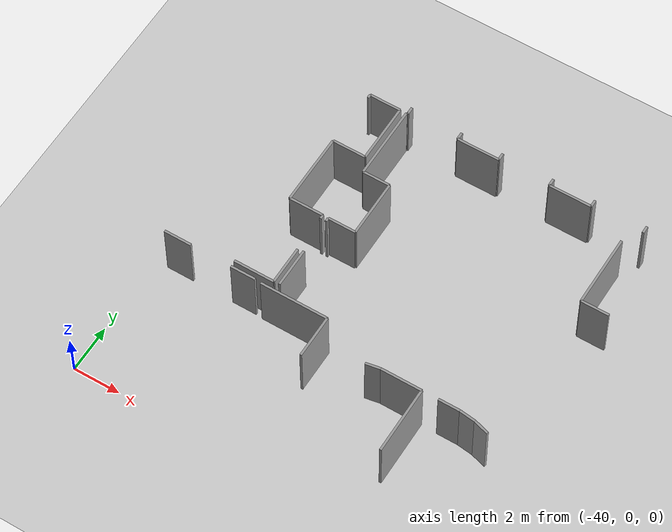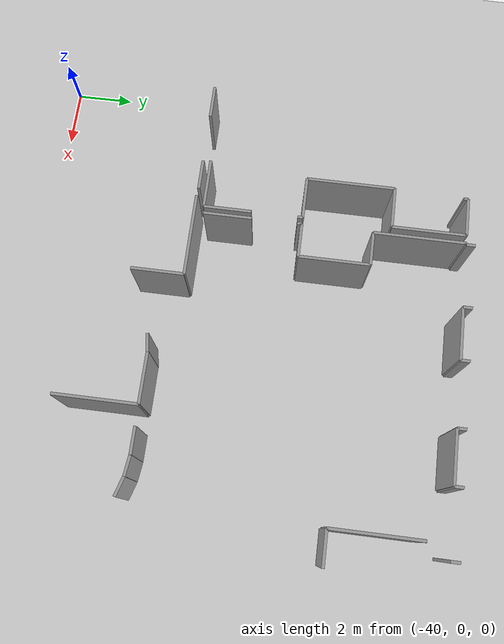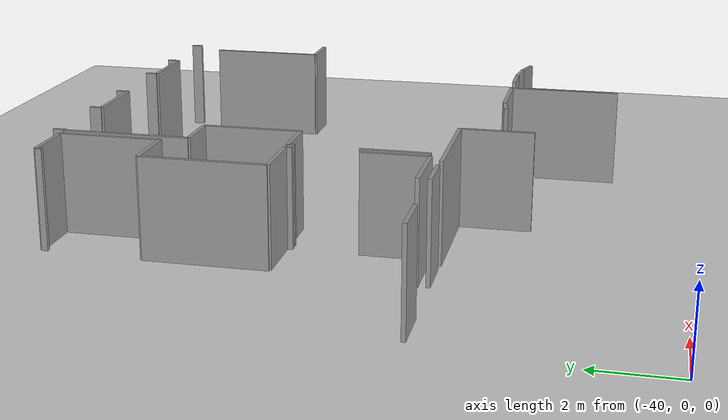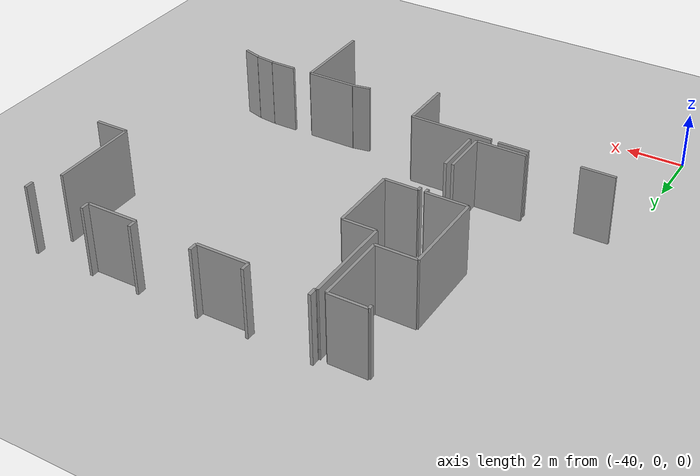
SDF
<sdf version="1.6">
 <world name="default">
  <model name="ground_plane">
   <static>1</static>
   <link name="link">
    <collision name="collision">
     <geometry><plane><normal>0 0 1</normal><size>100 100</size></plane></geometry>
     <surface><friction><ode><mu>100</mu><mu2>50</mu2></ode></friction></surface>
    </collision>
    <visual name="visual">
     <cast_shadows>0</cast_shadows>
     <geometry><plane><normal>0 0 1</normal><size>100 100</size></plane></geometry>
     <material>
      <script><uri>file://media/materials/scripts/gazebo.material</uri><name>Gazebo/Grey</name></script>
     </material>
    </visual>
   </link>
  </model>
  <model name="0510032270_A_40_1_104">
   <static>1</static>
   <link name="Wall_24">
    <collision name="Wall_24_Collision">
     <geometry><box><size>0.154262551304 0.1 2.5</size></box></geometry>
     <pose>0.0771312756522 0 1.25 0 0 0</pose>
    </collision>
    <visual name="Wall_24_Visual">
     <pose>0.0771312756522 0 1.25 0 0 0</pose>
     <geometry><box><size>0.154262551304 0.1 2.5</size></box></geometry>
     <material>
      <script><uri>file://media/materials/scripts/gazebo.material</uri><name>Gazebo/Grey</name></script>
      <ambient>1 1 1 1</ambient>
     </material>
    </visual>
    <pose>11.5399570505 -0.57956465939 0 0 0 1.57079632679</pose>
   </link>
   <link name="Wall_25">
    <collision name="Wall_25_Collision">
     <geometry><box><size>1.33346887429 0.1 2.5</size></box></geometry>
     <pose>0.666734437145 0 1.25 0 0 0</pose>
    </collision>
    <visual name="Wall_25_Visual">
     <pose>0.666734437145 0 1.25 0 0 0</pose>
     <geometry><box><size>1.33346887429 0.1 2.5</size></box></geometry>
     <material>
      <script><uri>file://media/materials/scripts/gazebo.material</uri><name>Gazebo/Grey</name></script>
      <ambient>1 1 1 1</ambient>
     </material>
    </visual>
    <pose>11.5399570505 -0.425302108085 0 0 0 0.0</pose>
   </link>
   <link name="Wall_26">
    <collision name="Wall_26_Collision">
     <geometry><box><size>2.53021080854 0.1 2.5</size></box></geometry>
     <pose>1.26510540427 0 1.25 0 0 0</pose>
    </collision>
    <visual name="Wall_26_Visual">
     <pose>1.26510540427 0 1.25 0 0 0</pose>
     <geometry><box><size>2.53021080854 0.1 2.5</size></box></geometry>
     <material>
      <script><uri>file://media/materials/scripts/gazebo.material</uri><name>Gazebo/Grey</name></script>
      <ambient>1 1 1 1</ambient>
     </material>
    </visual>
    <pose>12.8734259247 -0.425302108085 0 0 0 -1.57079632679</pose>
   </link>
   <link name="Wall_27">
    <collision name="Wall_27_Collision">
     <geometry><box><size>1.42279883604 0.1 2.5</size></box></geometry>
     <pose>0.711399418021 0 1.25 0 0 0</pose>
    </collision>
    <visual name="Wall_27_Visual">
     <pose>0.711399418021 0 1.25 0 0 0</pose>
     <geometry><box><size>1.42279883604 0.1 2.5</size></box></geometry>
     <material>
      <script><uri>file://media/materials/scripts/gazebo.material</uri><name>Gazebo/Grey</name></script>
      <ambient>1 1 1 1</ambient>
     </material>
    </visual>
    <pose>12.8734259247 -2.95551291663 0 0 0 3.14159265359</pose>
   </link>
   <link name="Wall_28">
    <collision name="Wall_28_Collision">
     <geometry><box><size>3.04484287838 0.1 2.5</size></box></geometry>
     <pose>1.52242143919 0 1.25 0 0 0</pose>
    </collision>
    <visual name="Wall_28_Visual">
     <pose>1.52242143919 0 1.25 0 0 0</pose>
     <geometry><box><size>3.04484287838 0.1 2.5</size></box></geometry>
     <material>
      <script><uri>file://media/materials/scripts/gazebo.material</uri><name>Gazebo/Grey</name></script>
      <ambient>1 1 1 1</ambient>
     </material>
    </visual>
    <pose>11.4506270887 -2.95551291663 0 0 0 -1.57079632679</pose>
   </link>
   <link name="Wall_29">
    <collision name="Wall_29_Collision">
     <geometry><box><size>1.4568535014 0.1 2.5</size></box></geometry>
     <pose>0.728426750702 0 1.25 0 0 0</pose>
    </collision>
    <visual name="Wall_29_Visual">
     <pose>0.728426750702 0 1.25 0 0 0</pose>
     <geometry><box><size>1.4568535014 0.1 2.5</size></box></geometry>
     <material>
      <script><uri>file://media/materials/scripts/gazebo.material</uri><name>Gazebo/Grey</name></script>
      <ambient>1 1 1 1</ambient>
     </material>
    </visual>
    <pose>11.4506270887 -6.00035579501 0 0 0 0.0</pose>
   </link>
   <link name="Wall_30">
    <collision name="Wall_30_Collision">
     <geometry><box><size>0.174466625157 0.1 2.5</size></box></geometry>
     <pose>0.0872333125786 0 1.25 0 0 0</pose>
    </collision>
    <visual name="Wall_30_Visual">
     <pose>0.0872333125786 0 1.25 0 0 0</pose>
     <geometry><box><size>0.174466625157 0.1 2.5</size></box></geometry>
     <material>
      <script><uri>file://media/materials/scripts/gazebo.material</uri><name>Gazebo/Grey</name></script>
      <ambient>1 1 1 1</ambient>
     </material>
    </visual>
    <pose>12.9074805901 -6.00035579501 0 0 0 -1.57079632679</pose>
   </link>
   <link name="Wall_31">
    <collision name="Wall_31_Collision">
     <geometry><box><size>1.64250225549 0.1 2.5</size></box></geometry>
     <pose>0.821251127743 0 1.25 0 0 0</pose>
    </collision>
    <visual name="Wall_31_Visual">
     <pose>0.821251127743 0 1.25 0 0 0</pose>
     <geometry><box><size>1.64250225549 0.1 2.5</size></box></geometry>
     <material>
      <script><uri>file://media/materials/scripts/gazebo.material</uri><name>Gazebo/Grey</name></script>
      <ambient>1 1 1 1</ambient>
     </material>
    </visual>
    <pose>12.9074805901 -7.76243058821 0 0 0 -1.57079632679</pose>
   </link>
   <link name="Wall_32">
    <collision name="Wall_32_Collision">
     <geometry><box><size>1.72192078478 0.1 2.5</size></box></geometry>
     <pose>0.860960392391 0 1.25 0 0 0</pose>
    </collision>
    <visual name="Wall_32_Visual">
     <pose>0.860960392391 0 1.25 0 0 0</pose>
     <geometry><box><size>1.72192078478 0.1 2.5</size></box></geometry>
     <material>
      <script><uri>file://media/materials/scripts/gazebo.material</uri><name>Gazebo/Grey</name></script>
      <ambient>1 1 1 1</ambient>
     </material>
    </visual>
    <pose>12.9074805901 -9.40493284369 0 0 0 3.14159265359</pose>
   </link>
   <link name="Wall_37">
    <collision name="Wall_37_Collision">
     <geometry><box><size>3.14853171023 0.1 2.5</size></box></geometry>
     <pose>1.57426585512 0 1.25 0 0 0</pose>
    </collision>
    <visual name="Wall_37_Visual">
     <pose>1.57426585512 0 1.25 0 0 0</pose>
     <geometry><box><size>3.14853171023 0.1 2.5</size></box></geometry>
     <material>
      <script><uri>file://media/materials/scripts/gazebo.material</uri><name>Gazebo/Grey</name></script>
      <ambient>1 1 1 1</ambient>
     </material>
    </visual>
    <pose>13.1584431427 -3.55795011246 0 0 0 1.57079632679</pose>
   </link>
   <link name="Wall_38">
    <collision name="Wall_38_Collision">
     <geometry><box><size>0.0537504606275 0.1 2.5</size></box></geometry>
     <pose>0.0268752303137 0 1.25 0 0 0</pose>
    </collision>
    <visual name="Wall_38_Visual">
     <pose>0.0268752303137 0 1.25 0 0 0</pose>
     <geometry><box><size>0.0537504606275 0.1 2.5</size></box></geometry>
     <material>
      <script><uri>file://media/materials/scripts/gazebo.material</uri><name>Gazebo/Grey</name></script>
      <ambient>1 1 1 1</ambient>
     </material>
    </visual>
    <pose>13.1584431427 -0.409418402226 0 0 0 0.0</pose>
   </link>
   <link name="Wall_39">
    <collision name="Wall_39_Collision">
     <geometry><box><size>0.305348361437 0.1 2.5</size></box></geometry>
     <pose>0.152674180718 0 1.25 0 0 0</pose>
    </collision>
    <visual name="Wall_39_Visual">
     <pose>0.152674180718 0 1.25 0 0 0</pose>
     <geometry><box><size>0.305348361437 0.1 2.5</size></box></geometry>
     <material>
      <script><uri>file://media/materials/scripts/gazebo.material</uri><name>Gazebo/Grey</name></script>
      <ambient>1 1 1 1</ambient>
     </material>
    </visual>
    <pose>13.2121936033 -0.409418402226 0 0 0 1.57079632679</pose>
   </link>
   <link name="Wall_40">
    <collision name="Wall_40_Collision">
     <geometry><box><size>0.310431147312 0.1 2.5</size></box></geometry>
     <pose>0.155215573656 0 1.25 0 0 0</pose>
    </collision>
    <visual name="Wall_40_Visual">
     <pose>0.155215573656 0 1.25 0 0 0</pose>
     <geometry><box><size>0.310431147312 0.1 2.5</size></box></geometry>
     <material>
      <script><uri>file://media/materials/scripts/gazebo.material</uri><name>Gazebo/Grey</name></script>
      <ambient>1 1 1 1</ambient>
     </material>
    </visual>
    <pose>15.418122673 -0.104070040789 0 0 0 -1.57079632679</pose>
   </link>
   <link name="Wall_41">
    <collision name="Wall_41_Collision">
     <geometry><box><size>1.79714601573 0.1 2.5</size></box></geometry>
     <pose>0.898573007866 0 1.25 0 0 0</pose>
    </collision>
    <visual name="Wall_41_Visual">
     <pose>0.898573007866 0 1.25 0 0 0</pose>
     <geometry><box><size>1.79714601573 0.1 2.5</size></box></geometry>
     <material>
      <script><uri>file://media/materials/scripts/gazebo.material</uri><name>Gazebo/Grey</name></script>
      <ambient>1 1 1 1</ambient>
     </material>
    </visual>
    <pose>15.418122673 -0.414501188101 0 0 0 0.0</pose>
   </link>
   <link name="Wall_42">
    <collision name="Wall_42_Collision">
     <geometry><box><size>0.31132063484 0.1 2.5</size></box></geometry>
     <pose>0.15566031742 0 1.25 0 0 0</pose>
    </collision>
    <visual name="Wall_42_Visual">
     <pose>0.15566031742 0 1.25 0 0 0</pose>
     <geometry><box><size>0.31132063484 0.1 2.5</size></box></geometry>
     <material>
      <script><uri>file://media/materials/scripts/gazebo.material</uri><name>Gazebo/Grey</name></script>
      <ambient>1 1 1 1</ambient>
     </material>
    </visual>
    <pose>17.2152686888 -0.414501188101 0 0 0 1.57079632679</pose>
   </link>
   <link name="Wall_43">
    <collision name="Wall_43_Collision">
     <geometry><box><size>0.31132063484 0.1 2.5</size></box></geometry>
     <pose>0.15566031742 0 1.25 0 0 0</pose>
    </collision>
    <visual name="Wall_43_Visual">
     <pose>0.15566031742 0 1.25 0 0 0</pose>
     <geometry><box><size>0.31132063484 0.1 2.5</size></box></geometry>
     <material>
      <script><uri>file://media/materials/scripts/gazebo.material</uri><name>Gazebo/Grey</name></script>
      <ambient>1 1 1 1</ambient>
     </material>
    </visual>
    <pose>19.411286326 -0.103180553261 0 0 0 -1.57079632679</pose>
   </link>
   <link name="Wall_44">
    <collision name="Wall_44_Collision">
     <geometry><box><size>1.79600238891 0.1 2.5</size></box></geometry>
     <pose>0.898001194455 0 1.25 0 0 0</pose>
    </collision>
    <visual name="Wall_44_Visual">
     <pose>0.898001194455 0 1.25 0 0 0</pose>
     <geometry><box><size>1.79600238891 0.1 2.5</size></box></geometry>
     <material>
      <script><uri>file://media/materials/scripts/gazebo.material</uri><name>Gazebo/Grey</name></script>
      <ambient>1 1 1 1</ambient>
     </material>
    </visual>
    <pose>19.411286326 -0.414501188101 0 0 0 0.0</pose>
   </link>
   <link name="Wall_45">
    <collision name="Wall_45_Collision">
     <geometry><box><size>0.304713013203 0.1 2.5</size></box></geometry>
     <pose>0.152356506601 0 1.25 0 0 0</pose>
    </collision>
    <visual name="Wall_45_Visual">
     <pose>0.152356506601 0 1.25 0 0 0</pose>
     <geometry><box><size>0.304713013203 0.1 2.5</size></box></geometry>
     <material>
      <script><uri>file://media/materials/scripts/gazebo.material</uri><name>Gazebo/Grey</name></script>
      <ambient>1 1 1 1</ambient>
     </material>
    </visual>
    <pose>21.2072887149 -0.414501188101 0 0 0 1.57079632679</pose>
   </link>
   <link name="Wall_46">
    <collision name="Wall_46_Collision">
     <geometry><box><size>0.303442316734 0.1 2.5</size></box></geometry>
     <pose>0.151721158367 0 1.25 0 0 0</pose>
    </collision>
    <visual name="Wall_46_Visual">
     <pose>0.151721158367 0 1.25 0 0 0</pose>
     <geometry><box><size>0.303442316734 0.1 2.5</size></box></geometry>
     <material>
      <script><uri>file://media/materials/scripts/gazebo.material</uri><name>Gazebo/Grey</name></script>
      <ambient>1 1 1 1</ambient>
     </material>
    </visual>
    <pose>23.4142343418 -0.109788174899 0 0 0 -1.57079632679</pose>
   </link>
   <link name="Wall_50">
    <collision name="Wall_50_Collision">
     <geometry><box><size>3.04141199792 0.1 2.5</size></box></geometry>
     <pose>1.52070599896 0 1.25 0 0 0</pose>
    </collision>
    <visual name="Wall_50_Visual">
     <pose>1.52070599896 0 1.25 0 0 0</pose>
     <geometry><box><size>3.04141199792 0.1 2.5</size></box></geometry>
     <material>
      <script><uri>file://media/materials/scripts/gazebo.material</uri><name>Gazebo/Grey</name></script>
      <ambient>1 1 1 1</ambient>
     </material>
    </visual>
    <pose>22.9157401172 -1.14642235409 0 0 0 -1.57079632679</pose>
   </link>
   <link name="Wall_51">
    <collision name="Wall_51_Collision">
     <geometry><box><size>1.16675349759 0.1 2.5</size></box></geometry>
     <pose>0.583376748796 0 1.25 0 0 0</pose>
    </collision>
    <visual name="Wall_51_Visual">
     <pose>0.583376748796 0 1.25 0 0 0</pose>
     <geometry><box><size>1.16675349759 0.1 2.5</size></box></geometry>
     <material>
      <script><uri>file://media/materials/scripts/gazebo.material</uri><name>Gazebo/Grey</name></script>
      <ambient>1 1 1 1</ambient>
     </material>
    </visual>
    <pose>22.9157401172 -4.18783435201 0 0 0 0.0</pose>
   </link>
   <link name="Wall_54">
    <collision name="Wall_54_Collision">
     <geometry><box><size>1.67388845826 0.1 2.5</size></box></geometry>
     <pose>0.836944229132 0 1.25 0 0 0</pose>
    </collision>
    <visual name="Wall_54_Visual">
     <pose>0.836944229132 0 1.25 0 0 0</pose>
     <geometry><box><size>1.67388845826 0.1 2.5</size></box></geometry>
     <material>
      <script><uri>file://media/materials/scripts/gazebo.material</uri><name>Gazebo/Grey</name></script>
      <ambient>1 1 1 1</ambient>
     </material>
    </visual>
    <pose>13.1440842726 -9.38574532701 0 0 0 1.57079632679</pose>
   </link>
   <link name="Wall_55">
    <collision name="Wall_55_Collision">
     <geometry><box><size>0.161505521176 0.1 2.5</size></box></geometry>
     <pose>0.0807527605881 0 1.25 0 0 0</pose>
    </collision>
    <visual name="Wall_55_Visual">
     <pose>0.0807527605881 0 1.25 0 0 0</pose>
     <geometry><box><size>0.161505521176 0.1 2.5</size></box></geometry>
     <material>
      <script><uri>file://media/materials/scripts/gazebo.material</uri><name>Gazebo/Grey</name></script>
      <ambient>1 1 1 1</ambient>
     </material>
    </visual>
    <pose>13.1440842726 -6.16402150018 0 0 0 1.57079632679</pose>
   </link>
   <link name="Wall_56">
    <collision name="Wall_56_Collision">
     <geometry><box><size>1.17958753193 0.1 2.5</size></box></geometry>
     <pose>0.589793765963 0 1.25 0 0 0</pose>
    </collision>
    <visual name="Wall_56_Visual">
     <pose>0.589793765963 0 1.25 0 0 0</pose>
     <geometry><box><size>1.17958753193 0.1 2.5</size></box></geometry>
     <material>
      <script><uri>file://media/materials/scripts/gazebo.material</uri><name>Gazebo/Grey</name></script>
      <ambient>1 1 1 1</ambient>
     </material>
    </visual>
    <pose>13.1440842726 -6.00251597901 0 0 0 0.0</pose>
   </link>
   <link name="Wall_57">
    <collision name="Wall_57_Collision">
     <geometry><box><size>2.43910187174 0.1 2.5</size></box></geometry>
     <pose>1.21955093587 0 1.25 0 0 0</pose>
    </collision>
    <visual name="Wall_57_Visual">
     <pose>1.21955093587 0 1.25 0 0 0</pose>
     <geometry><box><size>2.43910187174 0.1 2.5</size></box></geometry>
     <material>
      <script><uri>file://media/materials/scripts/gazebo.material</uri><name>Gazebo/Grey</name></script>
      <ambient>1 1 1 1</ambient>
     </material>
    </visual>
    <pose>14.3236718045 -6.00251597901 0 0 0 1.57079632679</pose>
   </link>
   <link name="Wall_58">
    <collision name="Wall_58_Collision">
     <geometry><box><size>1.16524147265 0.1 2.5</size></box></geometry>
     <pose>0.582620736326 0 1.25 0 0 0</pose>
    </collision>
    <visual name="Wall_58_Visual">
     <pose>0.582620736326 0 1.25 0 0 0</pose>
     <geometry><box><size>1.16524147265 0.1 2.5</size></box></geometry>
     <material>
      <script><uri>file://media/materials/scripts/gazebo.material</uri><name>Gazebo/Grey</name></script>
      <ambient>1 1 1 1</ambient>
     </material>
    </visual>
    <pose>14.3236718045 -3.56341410727 0 0 0 3.13690348403</pose>
   </link>
   <link name="Wall_71">
    <collision name="Wall_71_Collision">
     <geometry><box><size>2.88092303391 0.1 2.5</size></box></geometry>
     <pose>1.44046151696 0 1.25 0 0 0</pose>
    </collision>
    <visual name="Wall_71_Visual">
     <pose>1.44046151696 0 1.25 0 0 0</pose>
     <geometry><box><size>2.88092303391 0.1 2.5</size></box></geometry>
     <material>
      <script><uri>file://media/materials/scripts/gazebo.material</uri><name>Gazebo/Grey</name></script>
      <ambient>1 1 1 1</ambient>
     </material>
    </visual>
    <pose>12.5355477337 -9.70405479243 0 0 0 0.0</pose>
   </link>
   <link name="Wall_72">
    <collision name="Wall_72_Collision">
     <geometry><box><size>1.81315679124 0.1 2.5</size></box></geometry>
     <pose>0.906578395619 0 1.25 0 0 0</pose>
    </collision>
    <visual name="Wall_72_Visual">
     <pose>0.906578395619 0 1.25 0 0 0</pose>
     <geometry><box><size>1.81315679124 0.1 2.5</size></box></geometry>
     <material>
      <script><uri>file://media/materials/scripts/gazebo.material</uri><name>Gazebo/Grey</name></script>
      <ambient>1 1 1 1</ambient>
     </material>
    </visual>
    <pose>15.4164707676 -9.70405479243 0 0 0 -1.57079632679</pose>
   </link>
   <link name="Wall_138">
    <collision name="Wall_138_Collision">
     <geometry><box><size>0.622191877405 0.1 2.5</size></box></geometry>
     <pose>0.311095938702 0 1.25 0 0 0</pose>
    </collision>
    <visual name="Wall_138_Visual">
     <pose>0.311095938702 0 1.25 0 0 0</pose>
     <geometry><box><size>0.622191877405 0.1 2.5</size></box></geometry>
     <material>
      <script><uri>file://media/materials/scripts/gazebo.material</uri><name>Gazebo/Grey</name></script>
      <ambient>1 1 1 1</ambient>
     </material>
    </visual>
    <pose>17.5706824911 -10.582233122 0 0 0 0.17344180898</pose>
   </link>
   <link name="Wall_139">
    <collision name="Wall_139_Collision">
     <geometry><box><size>1.71836283467 0.1 2.5</size></box></geometry>
     <pose>0.859181417335 0 1.25 0 0 0</pose>
    </collision>
    <visual name="Wall_139_Visual">
     <pose>0.859181417335 0 1.25 0 0 0</pose>
     <geometry><box><size>1.71836283467 0.1 2.5</size></box></geometry>
     <material>
      <script><uri>file://media/materials/scripts/gazebo.material</uri><name>Gazebo/Grey</name></script>
      <ambient>1 1 1 1</ambient>
     </material>
    </visual>
    <pose>18.1835393979 -10.4748592704 0 0 0 0.0</pose>
   </link>
   <link name="Wall_140">
    <collision name="Wall_140_Collision">
     <geometry><box><size>2.84254800056 0.1 2.5</size></box></geometry>
     <pose>1.42127400028 0 1.25 0 0 0</pose>
    </collision>
    <visual name="Wall_140_Visual">
     <pose>1.42127400028 0 1.25 0 0 0</pose>
     <geometry><box><size>2.84254800056 0.1 2.5</size></box></geometry>
     <material>
      <script><uri>file://media/materials/scripts/gazebo.material</uri><name>Gazebo/Grey</name></script>
      <ambient>1 1 1 1</ambient>
     </material>
    </visual>
    <pose>19.9019022326 -10.4748592704 0 0 0 -1.57079632679</pose>
   </link>
   <link name="Wall_143">
    <collision name="Wall_143_Collision">
     <geometry><box><size>0.902194492802 0.1 2.5</size></box></geometry>
     <pose>0.451097246401 0 1.25 0 0 0</pose>
    </collision>
    <visual name="Wall_143_Visual">
     <pose>0.451097246401 0 1.25 0 0 0</pose>
     <geometry><box><size>0.902194492802 0.1 2.5</size></box></geometry>
     <material>
      <script><uri>file://media/materials/scripts/gazebo.material</uri><name>Gazebo/Grey</name></script>
      <ambient>1 1 1 1</ambient>
     </material>
    </visual>
    <pose>20.5915092062 -10.4658373254 0 0 0 0.0</pose>
   </link>
   <link name="Wall_144">
    <collision name="Wall_144_Collision">
     <geometry><box><size>0.671811298525 0.1 2.5</size></box></geometry>
     <pose>0.335905649262 0 1.25 0 0 0</pose>
    </collision>
    <visual name="Wall_144_Visual">
     <pose>0.335905649262 0 1.25 0 0 0</pose>
     <geometry><box><size>0.671811298525 0.1 2.5</size></box></geometry>
     <material>
      <script><uri>file://media/materials/scripts/gazebo.material</uri><name>Gazebo/Grey</name></script>
      <ambient>1 1 1 1</ambient>
     </material>
    </visual>
    <pose>21.493703699 -10.4658373254 0 0 0 -0.118302140539</pose>
   </link>
   <link name="Wall_145">
    <collision name="Wall_145_Collision">
     <geometry><box><size>0.659515534168 0.1 2.5</size></box></geometry>
     <pose>0.329757767084 0 1.25 0 0 0</pose>
    </collision>
    <visual name="Wall_145_Visual">
     <pose>0.329757767084 0 1.25 0 0 0</pose>
     <geometry><box><size>0.659515534168 0.1 2.5</size></box></geometry>
     <material>
      <script><uri>file://media/materials/scripts/gazebo.material</uri><name>Gazebo/Grey</name></script>
      <ambient>1 1 1 1</ambient>
     </material>
    </visual>
    <pose>22.1608193451 -10.5451287851 0 0 0 -0.288965427163</pose>
   </link>
   <link name="Wall_571">
    <collision name="Wall_571_Collision">
     <geometry><box><size>1.06014206387 0.1 2.5</size></box></geometry>
     <pose>0.530071031933 0 1.25 0 0 0</pose>
    </collision>
    <visual name="Wall_571_Visual">
     <pose>0.530071031933 0 1.25 0 0 0</pose>
     <geometry><box><size>1.06014206387 0.1 2.5</size></box></geometry>
     <material>
      <script><uri>file://media/materials/scripts/gazebo.material</uri><name>Gazebo/Grey</name></script>
      <ambient>1 1 1 1</ambient>
     </material>
    </visual>
    <pose>12.2690826842 -9.67254152001 0 0 0 3.14159265359</pose>
   </link>
   <link name="Wall_572">
    <collision name="Wall_572_Collision">
     <geometry><box><size>1.17132800488 0.1 2.5</size></box></geometry>
     <pose>0.58566400244 0 1.25 0 0 0</pose>
    </collision>
    <visual name="Wall_572_Visual">
     <pose>0.58566400244 0 1.25 0 0 0</pose>
     <geometry><box><size>1.17132800488 0.1 2.5</size></box></geometry>
     <material>
      <script><uri>file://media/materials/scripts/gazebo.material</uri><name>Gazebo/Grey</name></script>
      <ambient>1 1 1 1</ambient>
     </material>
    </visual>
    <pose>9.44775531469 -9.67254152001 0 0 0 3.14159265359</pose>
   </link>
   <pose>-47.8 15.2142705567 0 0 0 0</pose>
  </model>
 </world>
</sdf>
